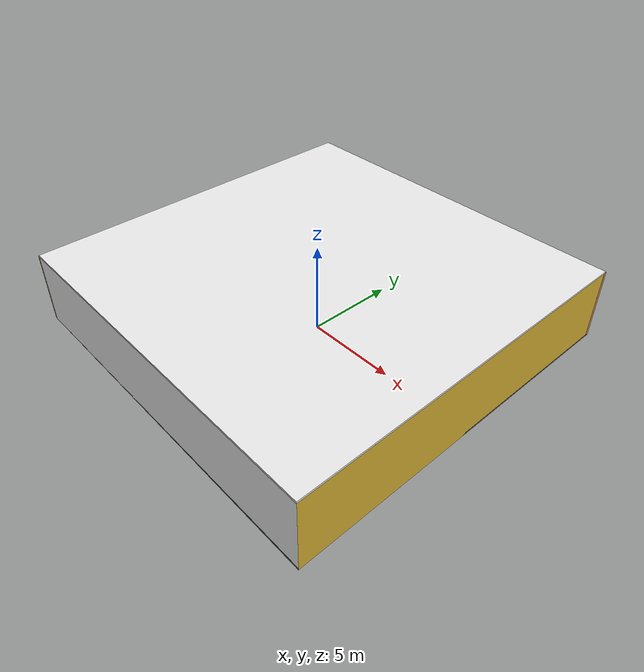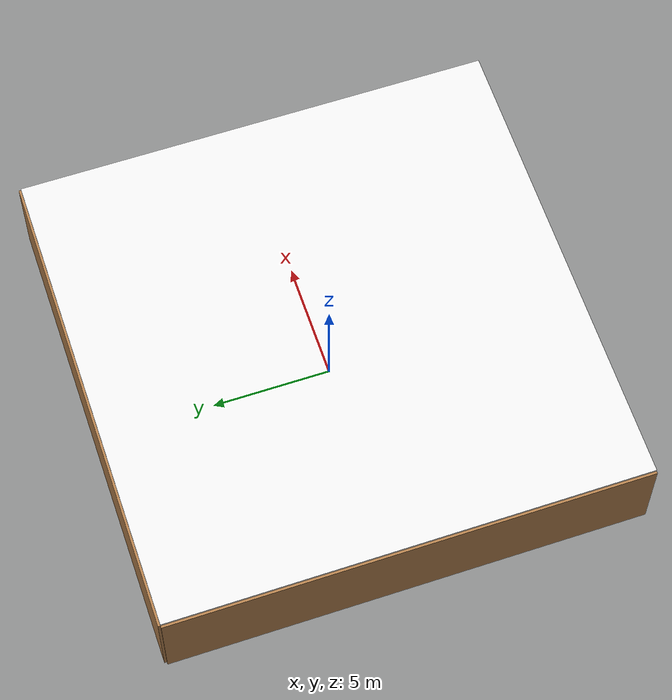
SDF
<sdf version="1.4">
 <world name="default">
  <physics type="ode">
   <max_step_size>0.001</max_step_size>
   <real_time_factor>1</real_time_factor>
   <real_time_update_rate>1000</real_time_update_rate>
   <gravity>0 0 -9.8</gravity>
  </physics>
  <scene><ambient>0.4 0.4 0.4 1</ambient><background>0.7 0.7 0.7 1</background><shadows>1</shadows></scene>
  <model name="Surrounding">
   <static>1</static>
   <link name="Ceiling">
    <collision name="Ceiling_Collision"><geometry><box><size>20 20 0.1</size></box></geometry></collision>
    <visual name="Ceiling_Visual">
     <geometry><box><size>20 20 0.1</size></box></geometry>
     <material>
      <script><uri>file://media/materials/scripts/gazebo.material</uri><name>Gazebo/WhiteGlow</name></script>
     </material>
    </visual>
    <pose>0 0 4.05 0 0 0</pose>
   </link>
   <link name="Wall_South">
    <collision name="Wall_South_Collision">
     <geometry><box><size>20 0 4</size></box></geometry>
     <pose>0 0 2 0 -0 0</pose>
    </collision>
    <visual name="Wall_South_Visual">
     <pose>0 0 2 0 -0 0</pose>
     <geometry><box><size>20 0 4</size></box></geometry>
     <material>
      <script><uri>file://media/materials/scripts/gazebo.material</uri><name>Gazebo/WhiteGlow</name></script>
     </material>
    </visual>
    <velocity_decay><linear>0</linear><angular>0</angular></velocity_decay>
    <pose>0 -10 0 0 -0 0</pose>
   </link>
   <link name="Wall_East">
    <collision name="Wall_21_Collision">
     <geometry><box><size>20 0 4</size></box></geometry>
     <pose>0 0 2 0 -0 0</pose>
    </collision>
    <visual name="Wall_21_Visual">
     <pose>0 0 2 0 -0 0</pose>
     <geometry><box><size>20 0 4</size></box></geometry>
     <material>
      <script><uri>file://media/materials/scripts/gazebo.material</uri><name>Gazebo/Gold</name></script>
     </material>
    </visual>
    <velocity_decay><linear>0</linear><angular>0</angular></velocity_decay>
    <pose>10 0 0 0 -0 1.5708</pose>
   </link>
   <link name="Wall_North">
    <collision name="Wall_22_Collision">
     <geometry><box><size>20 0.2 4</size></box></geometry>
     <pose>0 0 2 0 -0 0</pose>
    </collision>
    <visual name="Wall_22_Visual">
     <pose>0 0 2 0 -0 0</pose>
     <geometry><box><size>20 0.2 4</size></box></geometry>
     <material>
      <script><uri>file://media/materials/scripts/gazebo.material</uri><name>Gazebo/Wood</name></script>
     </material>
    </visual>
    <velocity_decay><linear>0</linear><angular>0</angular></velocity_decay>
    <pose>0 10 0 0 -0 0</pose>
   </link>
   <link name="Wall_West">
    <collision name="Wall_23_Collision">
     <geometry><box><size>20 0.2 4</size></box></geometry>
     <pose>0 0 2 0 -0 0</pose>
    </collision>
    <visual name="Wall_23_Visual">
     <pose>0 0 2 0 -0 0</pose>
     <geometry><box><size>20 0.2 4</size></box></geometry>
     <material>
      <script><uri>file://media/materials/scripts/gazebo.material</uri><name>Gazebo/Wood</name></script>
     </material>
    </visual>
    <velocity_decay><linear>0</linear><angular>0</angular></velocity_decay>
    <pose>-10 0 0 0 0 -1.5708</pose>
   </link>
   <link name="Ground_link">
    <collision name="collision">
     <pose>0 0 .05 0 -0 0</pose>
     <geometry><box><size>20 20 0.1</size></box></geometry>
    </collision>
    <visual name="visual">
     <pose>0 0 .05 0 -0 0</pose>
     <geometry><box><size>20 20 0.1</size></box></geometry>
     <material>
      <script><uri>file://media/materials/scripts/gazebo.material</uri><name>Gazebo/DarkGrey</name></script>
     </material>
    </visual>
   </link>
   <static>1</static>
  </model>
  <spherical_coordinates>
   <surface_model>EARTH_WGS84</surface_model>
   <latitude_deg>0</latitude_deg>
   <longitude_deg>0</longitude_deg>
   <elevation>0</elevation>
   <heading_deg>0</heading_deg>
  </spherical_coordinates>
  <light name="lightball_0" type="diffuse">
   <diffuse>0.8 0.8 0.8 1</diffuse>
   <specular>0.2 0.2 0.2 1</specular>
   <attenuation>
    <range>100</range>
    <constant>0.7</constant>
    <linear>0.01</linear>
    <quadratic>0.001</quadratic>
   </attenuation>
   <direction>-0.5 0.1 -0.9</direction>
   <pose>-7.38590227784 0.0192093308009 0.611322103771 0 0 0</pose>
  </light>
  <light name="lightball_1" type="diffuse">
   <diffuse>0.8 0.8 0.8 1</diffuse>
   <specular>0.2 0.2 0.2 1</specular>
   <attenuation>
    <range>100</range>
    <constant>0.7</constant>
    <linear>0.01</linear>
    <quadratic>0.001</quadratic>
   </attenuation>
   <direction>-0.5 0.1 -0.9</direction>
   <pose>-5.30751426486 -0.787007244007 2.18720809482 0 0 0</pose>
  </light>
  <light name="lightball_2" type="diffuse">
   <diffuse>0.8 0.8 0.8 1</diffuse>
   <specular>0.2 0.2 0.2 1</specular>
   <attenuation>
    <range>100</range>
    <constant>0.7</constant>
    <linear>0.01</linear>
    <quadratic>0.001</quadratic>
   </attenuation>
   <direction>-0.5 0.1 -0.9</direction>
   <pose>-1.61029815067 -9.65999853601 2.40656993507 0 0 0</pose>
  </light>
  <light name="lightball_3" type="diffuse">
   <diffuse>0.8 0.8 0.8 1</diffuse>
   <specular>0.2 0.2 0.2 1</specular>
   <attenuation>
    <range>100</range>
    <constant>0.7</constant>
    <linear>0.01</linear>
    <quadratic>0.001</quadratic>
   </attenuation>
   <direction>-0.5 0.1 -0.9</direction>
   <pose>0.881791084643 8.87501927559 0.92511525934 0 0 0</pose>
  </light>
  <light name="lightball_4" type="diffuse">
   <diffuse>0.8 0.8 0.8 1</diffuse>
   <specular>0.2 0.2 0.2 1</specular>
   <attenuation>
    <range>100</range>
    <constant>0.7</constant>
    <linear>0.01</linear>
    <quadratic>0.001</quadratic>
   </attenuation>
   <direction>-0.5 0.1 -0.9</direction>
   <pose>9.01244817883 -1.03911907341 2.18860928383 0 0 0</pose>
  </light>
  <light name="lightball_5" type="diffuse">
   <diffuse>0.8 0.8 0.8 1</diffuse>
   <specular>0.2 0.2 0.2 1</specular>
   <attenuation>
    <range>100</range>
    <constant>0.7</constant>
    <linear>0.01</linear>
    <quadratic>0.001</quadratic>
   </attenuation>
   <direction>-0.5 0.1 -0.9</direction>
   <pose>-3.15872282096 7.45020157864 1.00658227434 0 0 0</pose>
  </light>
  <light name="lightball_6" type="diffuse">
   <diffuse>0.8 0.8 0.8 1</diffuse>
   <specular>0.2 0.2 0.2 1</specular>
   <attenuation>
    <range>100</range>
    <constant>0.7</constant>
    <linear>0.01</linear>
    <quadratic>0.001</quadratic>
   </attenuation>
   <direction>-0.5 0.1 -0.9</direction>
   <pose>9.23726843736 4.86935270821 1.70378020458 0 0 0</pose>
  </light>
  <include><uri>model://table</uri><pose>-3.5400518216 -0.66561966475 0 0 0 0.469476178211</pose></include>
  <include><uri>model://table</uri><pose>-5.64992513757 6.39992167598 0 0 0 2.12172087652</pose></include>
  <include><uri>model://cabinet</uri><pose>-1.81502959824 1.17495545012 0 0 0 0.369473017717</pose></include>
  <include>
   <uri>model://construction_cone</uri>
   <pose>-2.41162303017 5.38869637891 0 0 0 1.53152228741</pose>
  </include>
  <include><uri>model://cabinet</uri><pose>2.53320040841 1.68909782201 0 0 0 2.79014534614</pose></include>
  <include><uri>model://cabinet</uri><pose>3.51101775393 -0.632053417237 0 0 0 0.859028429182</pose></include>
  <include><uri>model://cabinet</uri><pose>7.18913380151 -4.3562399812 0 0 0 3.04305547564</pose></include>
  <include><uri>model://cabinet</uri><pose>8.51572036722 -1.08452929226 0 0 0 2.88571177572</pose></include>
 </world>
</sdf>

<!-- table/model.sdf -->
<sdf version="1.5">
  <model name="table">
    <static>true</static>
    <link name="link">
      <collision name="surface">
        <pose>0 0 1.0 0 0 0</pose>
        <geometry>
          <box>
            <size>1.5 0.8 0.03</size>
          </box>
        </geometry>
        <surface>
          <friction>
            <ode>
              <mu>0.6</mu>
              <mu2>0.6</mu2>
            </ode>
          </friction>
        </surface>
      </collision>
      <visual name="visual1">
        <pose>0 0 1.0 0 0 0</pose>
        <geometry>
          <box>
            <size>1.5 0.8 0.03</size>
          </box>
        </geometry>
        <material>
          <script>
            <uri>model://media/materials/scripts/gazebo.material</uri>
            <name>Gazebo/Wood</name>
          </script>
        </material>
      </visual>
      <collision name="front_left_leg">
        <pose>0.68 0.38 0.5 0 0 0</pose>
        <geometry>
          <cylinder>
            <radius>0.02</radius>
            <length>1.0</length>
          </cylinder>
        </geometry>
      </collision>
      <visual name="front_left_leg">
        <pose>0.68 0.38 0.5 0 0 0</pose>
        <geometry>
          <cylinder>
            <radius>0.02</radius>
            <length>1.0</length>
          </cylinder>
        </geometry>
        <material>
          <script>
            <uri>model://media/materials/scripts/gazebo.material</uri>
            <name>Gazebo/Grey</name>
          </script>
        </material>
      </visual>
      <collision name="front_right_leg">
        <pose>0.68 -0.38 0.5 0 0 0</pose>
        <geometry>
          <cylinder>
            <radius>0.02</radius>
            <length>1.0</length>
          </cylinder>
        </geometry>
      </collision>
      <visual name="front_right_leg">
        <pose>0.68 -0.38 0.5 0 0 0</pose>
        <geometry>
          <cylinder>
            <radius>0.02</radius>
            <length>1.0</length>
          </cylinder>
        </geometry>
        <material>
          <script>
            <uri>model://media/materials/scripts/gazebo.material</uri>
            <name>Gazebo/Grey</name>
          </script>
        </material>
      </visual>
      <collision name="back_right_leg">
        <pose>-0.68 -0.38 0.5 0 0 0</pose>
        <geometry>
          <cylinder>
            <radius>0.02</radius>
            <length>1.0</length>
          </cylinder>
        </geometry>
      </collision>
      <visual name="back_right_leg">
        <pose>-0.68 -0.38 0.5 0 0 0</pose>
        <geometry>
          <cylinder>
            <radius>0.02</radius>
            <length>1.0</length>
          </cylinder>
        </geometry>
        <material>
          <script>
            <uri>model://media/materials/scripts/gazebo.material</uri>
            <name>Gazebo/Grey</name>
          </script>
        </material>
      </visual>
      <collision name="back_left_leg">
        <pose>-0.68 0.38 0.5 0 0 0</pose>
        <geometry>
          <cylinder>
            <radius>0.02</radius>
            <length>1.0</length>
          </cylinder>
        </geometry>
      </collision>
      <visual name="back_left_leg">
        <pose>-0.68 0.38 0.5 0 0 0</pose>
        <geometry>
          <cylinder>
            <radius>0.02</radius>
            <length>1.0</length>
          </cylinder>
        </geometry>
        <material>
          <script>
            <uri>model://media/materials/scripts/gazebo.material</uri>
            <name>Gazebo/Grey</name>
          </script>
        </material>
      </visual>
    </link>
  </model>
</sdf>

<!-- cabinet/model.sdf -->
<sdf version="1.5">
  <model name="cabinet">
    <static>true</static>
    <link name="cabinet_bottom_plate">
      <inertial>
        <pose>0 0 -1 0 0 0</pose>
        <inertia>
          <ixx>2.050000</ixx>
          <ixy>0</ixy>
          <ixz>0</ixz>
          <iyy>2.050000</iyy>
          <iyz>0</iyz>
          <izz>2.050000</izz>
        </inertia>
        <mass>25.000000</mass>
      </inertial>
      <collision name="cabinet_bottom_plate_geom">
        <pose>0 0 0.010000 0 0 0</pose>
        <geometry>
          <box>
            <size>0.450000 0.450000 0.020000</size>
          </box>
        </geometry>
      </collision>
      <visual name="cabinet_bottom_plate_geom_visual">
        <pose>0 0 0.010000 0 0 0</pose>
        <geometry>
          <box>
            <size>0.450000 0.450000 0.020000</size>
          </box>
        </geometry>
        <material>
          <script>
            <uri>model://media/materials/scripts/gazebo.material</uri>
            <name>Gazebo/Wood</name>
          </script>
        </material>
      </visual>
      <collision name="cabinet_bottom_plate_geom_cabinet_back_plate">
        <pose>0.235000 0 0.510000 0 0 0</pose>
        <geometry>
          <box>
            <size>0.020000 0.450000 1.020000</size>
          </box>
        </geometry>
      </collision>
      <visual name="cabinet_bottom_plate_geom_cabinet_back_plate_visual">
        <pose>0.235000 0 0.510000 0 0 0</pose>
        <geometry>
          <box>
            <size>0.020000 0.450000 1.020000</size>
          </box>
        </geometry>
        <material>
          <script>
            <uri>model://media/materials/scripts/gazebo.material</uri>
            <name>Gazebo/Wood</name>
          </script>
        </material>
      </visual>
      <collision name="cabinet_bottom_plate_geom_cabinet_left_plate">
        <pose>0 0.235000 0.510000 0 0 0</pose>
        <geometry>
          <box>
            <size>0.450000 0.020000 1.020000</size>
          </box>
        </geometry>
      </collision>
      <visual name="cabinet_bottom_plate_geom_cabinet_left_plate_visual">
        <pose>0 0.235000 0.510000 0 0 0</pose>
        <geometry>
          <box>
            <size>0.450000 0.020000 1.020000</size>
          </box>
        </geometry>
        <material>
          <script>
            <uri>model://media/materials/scripts/gazebo.material</uri>
            <name>Gazebo/Wood</name>
          </script>
        </material>
      </visual>
      <collision name="cabinet_bottom_plate_geom_cabinet_middle_plate">
        <pose>0 0 0.510000 0 0 0</pose>
        <geometry>
          <box>
            <size>0.450000 0.450000 0.020000</size>
          </box>
        </geometry>
      </collision>
      <visual name="cabinet_bottom_plate_geom_cabinet_middle_plate_visual">
        <pose>0 0 0.510000 0 0 0</pose>
        <geometry>
          <box>
            <size>0.450000 0.450000 0.020000</size>
          </box>
        </geometry>
        <material>
          <script>
            <uri>model://media/materials/scripts/gazebo.material</uri>
            <name>Gazebo/Wood</name>
          </script>
        </material>
      </visual>
      <collision name="cabinet_bottom_plate_geom_cabinet_right_plate">
        <pose>0 -0.235000 0.510000 0 0 0</pose>
        <geometry>
          <box>
            <size>0.450000 0.020000 1.020000</size>
          </box>
        </geometry>
      </collision>
      <visual name="cabinet_bottom_plate_geom_cabinet_right_plate_visual">
        <pose>0 -0.235000 0.510000 0 0 0</pose>
        <geometry>
          <box>
            <size>0.450000 0.020000 1.020000</size>
          </box>
        </geometry>
        <material>
          <script>
            <uri>model://media/materials/scripts/gazebo.material</uri>
            <name>Gazebo/Wood</name>
          </script>
        </material>
      </visual>
      <collision name="cabinet_bottom_plate_geom_cabinet_top_plate">
        <pose>0 0 1.010000 0 0 0</pose>
        <geometry>
          <box>
            <size>0.450000 0.450000 0.020000</size>
          </box>
        </geometry>
      </collision>
      <visual name="cabinet_bottom_plate_geom_cabinet_top_plate_visual">
        <pose>0 0 1.010000 0 0 0</pose>
        <geometry>
          <box>
            <size>0.450000 0.450000 0.020000</size>
          </box>
        </geometry>
        <material>
          <script>
            <uri>model://media/materials/scripts/gazebo.material</uri>
            <name>Gazebo/Wood</name>
          </script>
        </material>
      </visual>
    </link>
  </model>
</sdf>

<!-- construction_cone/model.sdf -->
<sdf version="1.5">
  <model name="Construction Cone">
    <link name="link">
      <collision name="collision">
        <geometry>
          <mesh>
            <scale>10 10 10</scale>
            <uri>file://isr-testbed/construction_cone/meshes/construction_cone.dae</uri>
          </mesh>
        </geometry>
      </collision>
      <visual name="visual">
        <geometry>
          <mesh>
            <scale>10 10 10</scale>
            <uri>file://isr-testbed/construction_cone/meshes/construction_cone.dae</uri>
          </mesh>
        </geometry>
      </visual>
    </link>
  </model>
</sdf>
